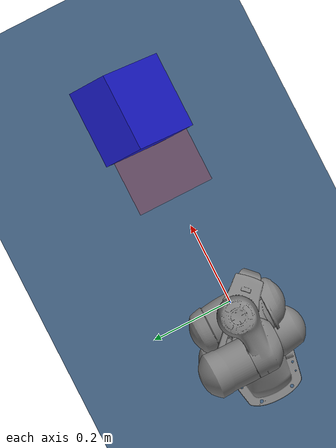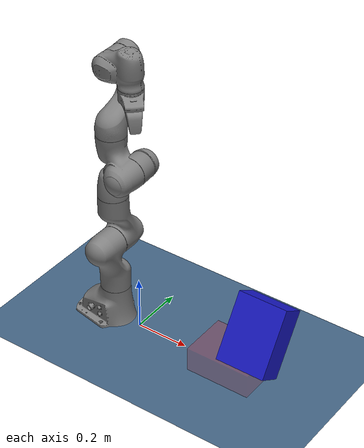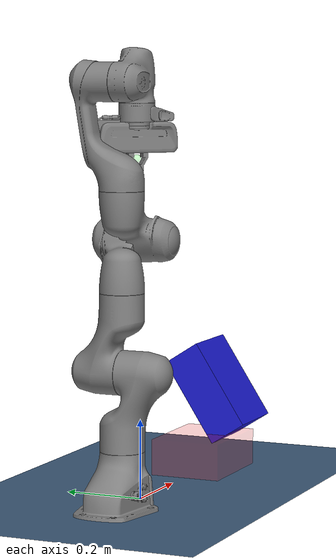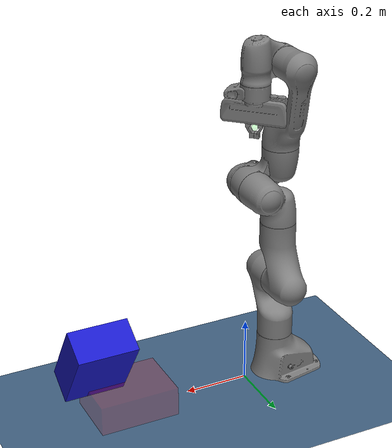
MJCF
<mujoco model='franka_throw'>

    <option gravity='0 0 -9.81' timestep="0.005" iterations="100" noslip_iterations="100"/>

    <default>
         <geom margin='0.001' solref='0.002 1' solimp='0.8 0.8 0.2'/>
         <joint limited="true" margin="0.001" armature="1" damping="10" frictionloss="0.1" />
    </default>

    <asset>
        <material name="material:target" specular="1" shininess="0.3" reflectance="0" rgba="1 1 1 0.5"></material>
    </asset>

    <compiler inertiafromgeom='true' angle='radian' meshdir="meshes/"/>

    <include file="franka-assets.xml"/>

    <worldbody>
        <!-- Floor -->
        <geom name='floor' pos='0 0 0' size='2 2 .01' type='plane' material="MatPlane" condim='6'/>
        <!-- Lighting -->
        <light cutoff="100" diffuse="1 1 1" dir="-0 0 -1.3" directional="true" exponent="1" pos="0 0 1.3" specular=".1 .1 .1" castshadow="false"/>

        <!-- Robot -->
        <body name="robot" pos="-0.105 0 0">
            <include file="franka.xml"/>
        </body>
        <!-- Object -->
        <body name='object' pos='0.5 0. 0.2' euler='1. 0 0'> <!--user="1001 0 2003 27 0 0 0.06 0 0">-->
            <joint limited='false' name="object:joint" type="free" damping="0" armature='0' frictionloss='0'/>
            <inertial pos='0 0 0' mass='0.01' diaginertia='8.80012e-05 8.80012e-05 8.80012e-05'/>
            <geom name='box' type='box' size='0.0936625 0.123825 0.0523875' rgba='0.1 0.1 0.8 1.0'/>
        </body>

        <!-- Target -->
        <body name="target" pos="0.4 0. 0.04"  euler='0 0 1.5707963267948966'>
            <geom name="target" type="box" size="0.0936625 0.123825 0.0523875" rgba='1 0 0 0.2'
                                    condim="4" group="2" contype="0" conaffinity="0"/>
            <site name="target" pos="0 0 0" rgba="1 0 0 0" size="0.0936625 0.123825 0.0523875"/>
        </body>

    </worldbody>

</mujoco>

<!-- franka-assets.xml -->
<mujocoinclude>

    <default>
        <default class='visual'>
            <geom type='mesh' euler='1.57079 0.0 0.0'/>
        </default>
    </default>

    <asset>
        <texture type="skybox" builtin="gradient" width="128" height="128" rgb1=".4 .6 .8"
            rgb2="0 0 0"/>

        <texture name="texgeom" type="cube" builtin="flat" mark="cross" width="127" height="1278"
            rgb1="0.8 0.8 0.8" rgb2="0.8 0.8 0.8" markrgb="1 1 1" random="0.0"/>
        <texture name="texplane" type="2d" builtin="checker" rgb1=".4 .6 .8" rgb2=".1 0.15 0.2"
            width="512" height="512"/>
        <material name='MatPlane' reflectance='0.3' texture="texplane" texrepeat="1 1" texuniform="true"/>
        <material name='geom' texture="texgeom" texuniform="true"/>

        <mesh name="viz_finger" file="franka/finger.stl"/>
        <mesh name="viz_hand"   file="franka/hand.stl"/>
        <mesh name="viz_link0"  file="franka/link0.stl"/>
        <mesh name="viz_link1"  file="franka/link1.stl"/>
        <mesh name="viz_link2"  file="franka/link2.stl"/>
        <mesh name="viz_link3"  file="franka/link3.stl"/>
        <mesh name="viz_link4"  file="franka/link4.stl"/>
        <mesh name="viz_link5"  file="franka/link5.stl"/>
        <mesh name="viz_link6"  file="franka/link6.stl"/>
        <mesh name="viz_link7"  file="franka/link7.stl"/>
    </asset>

    <equality>
        <!-- Links default hand grippers together -->
        <joint name='finger2' joint1='finger1' joint2='finger2' polycoef="0 -1 0 0 0" />
    </equality>

    <actuator>

        <velocity name='joint1' ctrlrange='-2 2' kv='120'  joint='joint1' />
        <velocity name='joint2' ctrlrange='-2 2' kv='120'  joint='joint2' />
        <velocity name='joint3' ctrlrange='-2 2' kv='120'  joint='joint3' />
        <velocity name='joint4' ctrlrange='-2 2' kv='120'  joint='joint4' />
        <velocity name='joint5' ctrlrange='-2 2' kv='100'  joint='joint5' />
        <velocity name='joint6' ctrlrange='-2 2' kv='100'  joint='joint6' />
        <velocity name='joint7' ctrlrange='-2 2' kv='100'  joint='joint7' />
        <velocity name='finger' ctrlrange='-2 2' kv='100'  joint='finger2' />

    </actuator>

</mujocoinclude>

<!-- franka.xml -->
<mujocoinclude>

    <body name='link0' pos='0 0 0'>
        <geom name='vlink0' mesh='viz_link0' class='visual' contype='2' conaffinity='2'/>
        <body name='link1' pos='0 0 0.333'>
            <joint name='joint1' pos='0 0 -0.333' range='-2.8973 2.8973'  />
            <geom name='vlink1' mesh='viz_link1' class='visual'/>
            <body name='link2' pos='0 0 0' euler='-1.5707 0 0' >
                <joint name='joint2' pos='0 0 0' range='-1.7628 1.7628'  />
                <geom name='vlink2' mesh='viz_link2' class='visual'/>
                <body name='link3' pos='0 -0.316 0' euler='1.5707 0 0' >
                    <joint name='joint3' pos='0 0 -0.12' range='-2.8973 2.8973' />
                    <geom name='vlink3' mesh='viz_link3' class='visual'/>
                    <body name='link4' pos='0.0825 0 0' euler='1.5707 0 0' >
                        <joint name='joint4' pos='0 0 0' range='-3.0718 -0.0698' />
                        <geom name='vlink4' mesh='viz_link4' class='visual'/>
                        <body name='link5' pos='-0.0825 0.384 0' euler='-1.5707 0 0' >
                            <joint name='joint5' pos='0 0 -0.26' range='-2.8973 2.9873' />
                            <geom name='vlink5' mesh='viz_link5' class='visual'/>
                            <body name='link6' pos='0 0 0' euler='1.5707 0 0' >
                                <joint name='joint6' pos='0 0 0' range='-0.0175 3.7525' />
                                <geom name='vlink6' mesh='viz_link6' class='visual'/>
                                <body name='link7' pos='0.088 0 0' euler='1.5707 0 0' >
                                    <joint name='joint7' pos='0 0 0' range='-2.8973 2.9873' />
                                    <geom name='vlink7' mesh='viz_link7' class='visual'/>
                                    <!-- Hand Start-->
                                    <body name='hand' pos='0 0 0.107' euler='0 0 -0.7853981633974483' >
                                        <site name='grasp' pos='0 0 0.08' size='0.01' rgba='0 1 0 0.125'/>
                                        <geom name='vhand' mesh='viz_hand' class='visual'/>
                                        <body name='finger1' pos='0 0 0.0584' euler='0 0 0' >
                                            <joint name='finger1' type='slide'
                                                    axis='0 1 0' pos='0 0 0' range='0.0 0.03' />
                                            <geom name='vf1' mesh='viz_finger' class='visual'/>
                                        </body>
                                        <body name='finger2' pos='0 0 0.0584' euler='0 0 -3.1415' >
                                            <joint name='finger2' type='slide'
                                                    axis='0 -1 0' pos='0 0 0' range='-0.03 0' />
                                            <geom name='vf2' mesh='viz_finger' class='visual'/>
                                        </body>
                                    </body>
                                    <!-- Hand End -->
                                </body>
                            </body>
                        </body>
                    </body>
                </body>
            </body>
        </body>
    </body>
</mujocoinclude>
